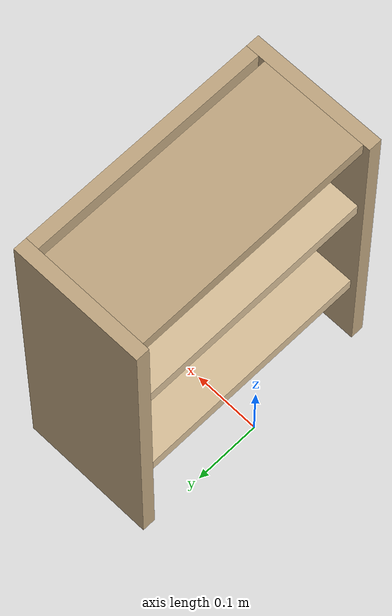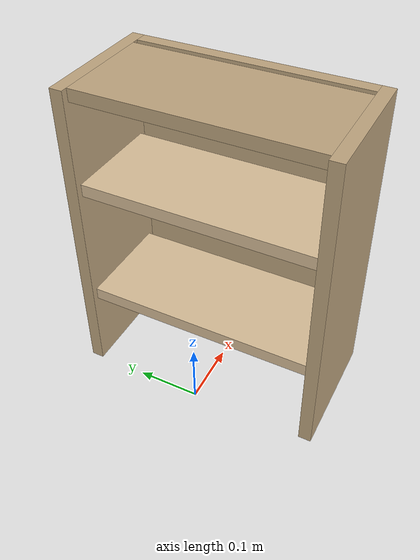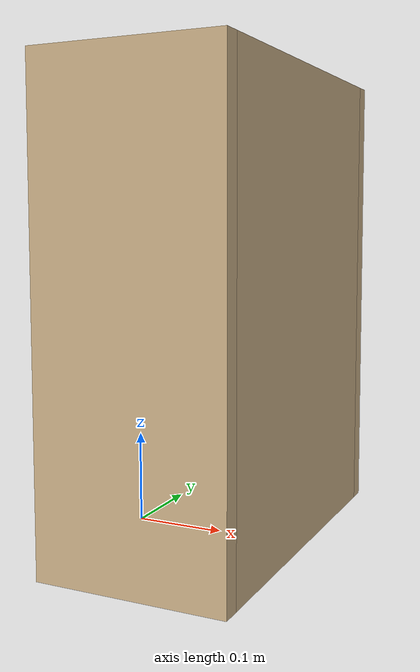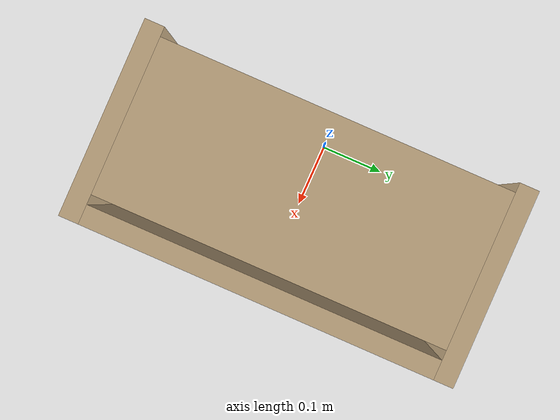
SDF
<?xml version="1.0"?>
<sdf version="1.8">
  <model name="shelf_small">
    <static>true</static>

    <!-- Left side panel -->
    <link name="left_panel">
      <pose>0.10 -0.19 0.25 0 0 0</pose>
      <visual name="v">
        <geometry><box><size>0.20 0.02 0.50</size></box></geometry>
        <material>
          <ambient>0.75 0.65 0.50 1</ambient>
          <diffuse>0.75 0.65 0.50 1</diffuse>
          <specular>0.05 0.05 0.05 1</specular>
        </material>
      </visual>
      <collision name="c">
        <geometry><box><size>0.20 0.02 0.50</size></box></geometry>
      </collision>
    </link>

    <!-- Right side panel -->
    <link name="right_panel">
      <pose>0.10 0.19 0.25 0 0 0</pose>
      <visual name="v">
        <geometry><box><size>0.20 0.02 0.50</size></box></geometry>
        <material>
          <ambient>0.75 0.65 0.50 1</ambient>
          <diffuse>0.75 0.65 0.50 1</diffuse>
          <specular>0.05 0.05 0.05 1</specular>
        </material>
      </visual>
      <collision name="c">
        <geometry><box><size>0.20 0.02 0.50</size></box></geometry>
      </collision>
    </link>

    <!-- Back panel -->
    <link name="back_panel">
      <pose>0.19 0.00 0.25 0 0 0</pose>
      <visual name="v">
        <geometry><box><size>0.02 0.36 0.50</size></box></geometry>
        <material>
          <ambient>0.75 0.65 0.50 1</ambient>
          <diffuse>0.75 0.65 0.50 1</diffuse>
          <specular>0.05 0.05 0.05 1</specular>
        </material>
      </visual>
      <collision name="c">
        <geometry><box><size>0.02 0.36 0.50</size></box></geometry>
      </collision>
    </link>

    <!-- Lower shelf board (top surface at z=0.15) -->
    <link name="lower_board">
      <pose>0.09 0.00 0.14 0 0 0</pose>
      <visual name="v">
        <geometry><box><size>0.16 0.36 0.02</size></box></geometry>
        <material>
          <ambient>0.85 0.75 0.60 1</ambient>
          <diffuse>0.85 0.75 0.60 1</diffuse>
          <specular>0.05 0.05 0.05 1</specular>
        </material>
      </visual>
      <collision name="c">
        <geometry><box><size>0.16 0.36 0.02</size></box></geometry>
      </collision>
    </link>

    <!-- Upper shelf board (top surface at z=0.35) -->
    <link name="upper_board">
      <pose>0.09 0.00 0.34 0 0 0</pose>
      <visual name="v">
        <geometry><box><size>0.16 0.36 0.02</size></box></geometry>
        <material>
          <ambient>0.85 0.75 0.60 1</ambient>
          <diffuse>0.85 0.75 0.60 1</diffuse>
          <specular>0.05 0.05 0.05 1</specular>
        </material>
      </visual>
      <collision name="c">
        <geometry><box><size>0.16 0.36 0.02</size></box></geometry>
      </collision>
    </link>

    <!-- Top cap -->
    <link name="top_cap">
      <pose>0.09 0.00 0.49 0 0 0</pose>
      <visual name="v">
        <geometry><box><size>0.16 0.36 0.02</size></box></geometry>
        <material>
          <ambient>0.75 0.65 0.50 1</ambient>
          <diffuse>0.75 0.65 0.50 1</diffuse>
          <specular>0.05 0.05 0.05 1</specular>
        </material>
      </visual>
      <collision name="c">
        <geometry><box><size>0.16 0.36 0.02</size></box></geometry>
      </collision>
    </link>

  </model>
</sdf>
